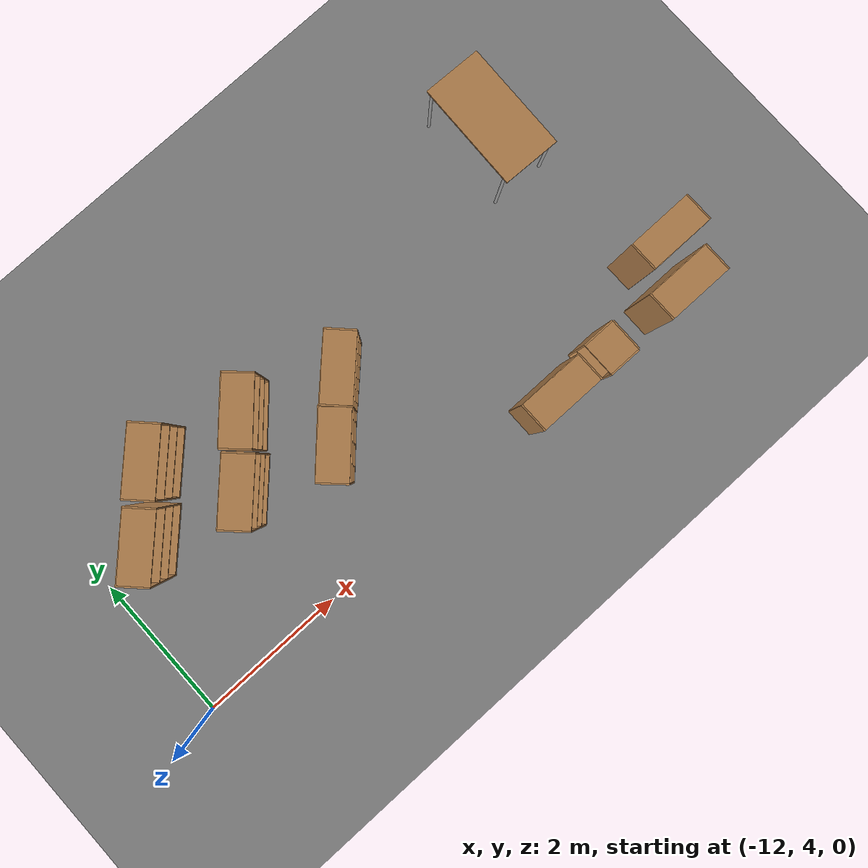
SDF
<sdf version="1.6">
 <world name="default">
  <model name="ground_plane">
   <static>1</static>
   <link name="link">
    <collision name="collision">
     <geometry><plane><normal>0 0 1</normal><size>100 100</size></plane></geometry>
    </collision>
    <visual name="visual">
     <geometry><plane><normal>0 0 1</normal><size>100 100</size></plane></geometry>
     <material>
      <ambient>0.5 0.5 0.5 1</ambient>
      <diffuse>0.5 0.5 0.5 1</diffuse>
      <specular>0.1 0.1 0.1 1</specular>
     </material>
    </visual>
   </link>
  </model>
  <model name="table_0">
   <static>1</static>
   <link name="link">
    <collision name="surface">
     <pose>0 0 1 0 -0 0</pose>
     <geometry><box><size>1.5 0.8 0.03</size></box></geometry>
     <surface><friction><ode><mu>0.6</mu><mu2>0.6</mu2></ode></friction></surface>
    </collision>
    <visual name="visual1">
     <pose>0 0 1 0 -0 0</pose>
     <geometry><box><size>1.5 0.8 0.03</size></box></geometry>
     <material>
      <script><uri>file://media/materials/scripts/gazebo.material</uri><name>Gazebo/Wood</name></script>
     </material>
    </visual>
    <collision name="front_left_leg">
     <pose>0.68 0.38 0.5 0 -0 0</pose>
     <geometry><cylinder><radius>0.02</radius><length>1</length></cylinder></geometry>
    </collision>
    <visual name="front_left_leg">
     <pose>0.68 0.38 0.5 0 -0 0</pose>
     <geometry><cylinder><radius>0.02</radius><length>1</length></cylinder></geometry>
     <material>
      <script><uri>file://media/materials/scripts/gazebo.material</uri><name>Gazebo/Grey</name></script>
     </material>
    </visual>
    <collision name="front_right_leg">
     <pose>0.68 -0.38 0.5 0 -0 0</pose>
     <geometry><cylinder><radius>0.02</radius><length>1</length></cylinder></geometry>
    </collision>
    <visual name="front_right_leg">
     <pose>0.68 -0.38 0.5 0 -0 0</pose>
     <geometry><cylinder><radius>0.02</radius><length>1</length></cylinder></geometry>
     <material>
      <script><uri>file://media/materials/scripts/gazebo.material</uri><name>Gazebo/Grey</name></script>
     </material>
    </visual>
    <collision name="back_right_leg">
     <pose>-0.68 -0.38 0.5 0 -0 0</pose>
     <geometry><cylinder><radius>0.02</radius><length>1</length></cylinder></geometry>
    </collision>
    <visual name="back_right_leg">
     <pose>-0.68 -0.38 0.5 0 -0 0</pose>
     <geometry><cylinder><radius>0.02</radius><length>1</length></cylinder></geometry>
     <material>
      <script><uri>file://media/materials/scripts/gazebo.material</uri><name>Gazebo/Grey</name></script>
     </material>
    </visual>
    <collision name="back_left_leg">
     <pose>-0.68 0.38 0.5 0 -0 0</pose>
     <geometry><cylinder><radius>0.02</radius><length>1</length></cylinder></geometry>
    </collision>
    <visual name="back_left_leg">
     <pose>-0.68 0.38 0.5 0 -0 0</pose>
     <geometry><cylinder><radius>0.02</radius><length>1</length></cylinder></geometry>
     <material>
      <script><uri>file://media/materials/scripts/gazebo.material</uri><name>Gazebo/Grey</name></script>
     </material>
    </visual>
   </link>
   <pose>-4.56564 7.09419 0 0 0 -1.60175</pose>
  </model>
  <model name="bookshelf_2">
   <static>1</static>
   <link name="link">
    <inertial><mass>1</mass></inertial>
    <collision name="back">
     <pose>0 0.005 0.6 0 -0 0</pose>
     <geometry><box><size>0.9 0.01 1.2</size></box></geometry>
    </collision>
    <visual name="visual1">
     <pose>0 0.005 0.6 0 -0 0</pose>
     <geometry><box><size>0.9 0.01 1.2</size></box></geometry>
     <material>
      <script><uri>file://media/materials/scripts/gazebo.material</uri><name>Gazebo/Wood</name></script>
     </material>
    </visual>
    <collision name="left_side">
     <pose>0.45 -0.195 0.6 0 -0 0</pose>
     <geometry><box><size>0.02 0.4 1.2</size></box></geometry>
    </collision>
    <visual name="visual2">
     <pose>0.45 -0.195 0.6 0 -0 0</pose>
     <geometry><box><size>0.02 0.4 1.2</size></box></geometry>
     <material>
      <script><uri>file://media/materials/scripts/gazebo.material</uri><name>Gazebo/Wood</name></script>
     </material>
    </visual>
    <collision name="right_side">
     <pose>-0.45 -0.195 0.6 0 -0 0</pose>
     <geometry><box><size>0.02 0.4 1.2</size></box></geometry>
    </collision>
    <visual name="visual3">
     <pose>-0.45 -0.195 0.6 0 -0 0</pose>
     <geometry><box><size>0.02 0.4 1.2</size></box></geometry>
     <material>
      <script><uri>file://media/materials/scripts/gazebo.material</uri><name>Gazebo/Wood</name></script>
     </material>
    </visual>
    <collision name="bottom">
     <pose>0 -0.195 0.03 0 -0 0</pose>
     <geometry><box><size>0.88 0.4 0.06</size></box></geometry>
    </collision>
    <visual name="visual4">
     <pose>0 -0.195 0.03 0 -0 0</pose>
     <geometry><box><size>0.88 0.4 0.06</size></box></geometry>
     <material>
      <script><uri>file://media/materials/scripts/gazebo.material</uri><name>Gazebo/Wood</name></script>
     </material>
    </visual>
    <collision name="top">
     <pose>0 -0.195 1.19 0 -0 0</pose>
     <geometry><box><size>0.88 0.4 0.02</size></box></geometry>
    </collision>
    <visual name="visual5">
     <pose>0 -0.195 1.19 0 -0 0</pose>
     <geometry><box><size>0.88 0.4 0.02</size></box></geometry>
     <material>
      <script><uri>file://media/materials/scripts/gazebo.material</uri><name>Gazebo/Wood</name></script>
     </material>
    </visual>
    <collision name="low_shelf">
     <pose>0 -0.195 0.43 0 -0 0</pose>
     <geometry><box><size>0.88 0.4 0.02</size></box></geometry>
    </collision>
    <visual name="visual6">
     <pose>0 -0.195 0.43 0 -0 0</pose>
     <geometry><box><size>0.88 0.4 0.02</size></box></geometry>
     <material>
      <script><uri>file://media/materials/scripts/gazebo.material</uri><name>Gazebo/Wood</name></script>
     </material>
    </visual>
    <collision name="high_shelf">
     <pose>0 -0.195 0.8 0 -0 0</pose>
     <geometry><box><size>0.88 0.4 0.02</size></box></geometry>
    </collision>
    <visual name="visual7">
     <pose>0 -0.195 0.8 0 -0 0</pose>
     <geometry><box><size>0.88 0.4 0.02</size></box></geometry>
     <material>
      <script><uri>file://media/materials/scripts/gazebo.material</uri><name>Gazebo/Wood</name></script>
     </material>
    </visual>
   </link>
   <pose>-4.00194 4.40221 0 0 0 -3.13752</pose>
  </model>
  <model name="bookshelf_2_clone_0">
   <static>1</static>
   <link name="link">
    <inertial><mass>1</mass></inertial>
    <collision name="back">
     <pose>0 0.005 0.6 0 -0 0</pose>
     <geometry><box><size>0.9 0.01 1.2</size></box></geometry>
    </collision>
    <visual name="visual1">
     <pose>0 0.005 0.6 0 -0 0</pose>
     <geometry><box><size>0.9 0.01 1.2</size></box></geometry>
     <material>
      <script><uri>file://media/materials/scripts/gazebo.material</uri><name>Gazebo/Wood</name></script>
     </material>
    </visual>
    <collision name="left_side">
     <pose>0.45 -0.195 0.6 0 -0 0</pose>
     <geometry><box><size>0.02 0.4 1.2</size></box></geometry>
    </collision>
    <visual name="visual2">
     <pose>0.45 -0.195 0.6 0 -0 0</pose>
     <geometry><box><size>0.02 0.4 1.2</size></box></geometry>
     <material>
      <script><uri>file://media/materials/scripts/gazebo.material</uri><name>Gazebo/Wood</name></script>
     </material>
    </visual>
    <collision name="right_side">
     <pose>-0.45 -0.195 0.6 0 -0 0</pose>
     <geometry><box><size>0.02 0.4 1.2</size></box></geometry>
    </collision>
    <visual name="visual3">
     <pose>-0.45 -0.195 0.6 0 -0 0</pose>
     <geometry><box><size>0.02 0.4 1.2</size></box></geometry>
     <material>
      <script><uri>file://media/materials/scripts/gazebo.material</uri><name>Gazebo/Wood</name></script>
     </material>
    </visual>
    <collision name="bottom">
     <pose>0 -0.195 0.03 0 -0 0</pose>
     <geometry><box><size>0.88 0.4 0.06</size></box></geometry>
    </collision>
    <visual name="visual4">
     <pose>0 -0.195 0.03 0 -0 0</pose>
     <geometry><box><size>0.88 0.4 0.06</size></box></geometry>
     <material>
      <script><uri>file://media/materials/scripts/gazebo.material</uri><name>Gazebo/Wood</name></script>
     </material>
    </visual>
    <collision name="top">
     <pose>0 -0.195 1.19 0 -0 0</pose>
     <geometry><box><size>0.88 0.4 0.02</size></box></geometry>
    </collision>
    <visual name="visual5">
     <pose>0 -0.195 1.19 0 -0 0</pose>
     <geometry><box><size>0.88 0.4 0.02</size></box></geometry>
     <material>
      <script><uri>file://media/materials/scripts/gazebo.material</uri><name>Gazebo/Wood</name></script>
     </material>
    </visual>
    <collision name="low_shelf">
     <pose>0 -0.195 0.43 0 -0 0</pose>
     <geometry><box><size>0.88 0.4 0.02</size></box></geometry>
    </collision>
    <visual name="visual6">
     <pose>0 -0.195 0.43 0 -0 0</pose>
     <geometry><box><size>0.88 0.4 0.02</size></box></geometry>
     <material>
      <script><uri>file://media/materials/scripts/gazebo.material</uri><name>Gazebo/Wood</name></script>
     </material>
    </visual>
    <collision name="high_shelf">
     <pose>0 -0.195 0.8 0 -0 0</pose>
     <geometry><box><size>0.88 0.4 0.02</size></box></geometry>
    </collision>
    <visual name="visual7">
     <pose>0 -0.195 0.8 0 -0 0</pose>
     <geometry><box><size>0.88 0.4 0.02</size></box></geometry>
     <material>
      <script><uri>file://media/materials/scripts/gazebo.material</uri><name>Gazebo/Wood</name></script>
     </material>
    </visual>
   </link>
   <pose>-8.13666 6.16179 0 0 -0 0.782442</pose>
  </model>
  <model name="bookshelf_3">
   <static>1</static>
   <link name="link">
    <inertial><mass>1</mass></inertial>
    <collision name="back">
     <pose>0 0.005 0.6 0 -0 0</pose>
     <geometry><box><size>0.9 0.01 1.2</size></box></geometry>
    </collision>
    <visual name="visual1">
     <pose>0 0.005 0.6 0 -0 0</pose>
     <geometry><box><size>0.9 0.01 1.2</size></box></geometry>
     <material>
      <script><uri>file://media/materials/scripts/gazebo.material</uri><name>Gazebo/Wood</name></script>
     </material>
    </visual>
    <collision name="left_side">
     <pose>0.45 -0.195 0.6 0 -0 0</pose>
     <geometry><box><size>0.02 0.4 1.2</size></box></geometry>
    </collision>
    <visual name="visual2">
     <pose>0.45 -0.195 0.6 0 -0 0</pose>
     <geometry><box><size>0.02 0.4 1.2</size></box></geometry>
     <material>
      <script><uri>file://media/materials/scripts/gazebo.material</uri><name>Gazebo/Wood</name></script>
     </material>
    </visual>
    <collision name="right_side">
     <pose>-0.45 -0.195 0.6 0 -0 0</pose>
     <geometry><box><size>0.02 0.4 1.2</size></box></geometry>
    </collision>
    <visual name="visual3">
     <pose>-0.45 -0.195 0.6 0 -0 0</pose>
     <geometry><box><size>0.02 0.4 1.2</size></box></geometry>
     <material>
      <script><uri>file://media/materials/scripts/gazebo.material</uri><name>Gazebo/Wood</name></script>
     </material>
    </visual>
    <collision name="bottom">
     <pose>0 -0.195 0.03 0 -0 0</pose>
     <geometry><box><size>0.88 0.4 0.06</size></box></geometry>
    </collision>
    <visual name="visual4">
     <pose>0 -0.195 0.03 0 -0 0</pose>
     <geometry><box><size>0.88 0.4 0.06</size></box></geometry>
     <material>
      <script><uri>file://media/materials/scripts/gazebo.material</uri><name>Gazebo/Wood</name></script>
     </material>
    </visual>
    <collision name="top">
     <pose>0 -0.195 1.19 0 -0 0</pose>
     <geometry><box><size>0.88 0.4 0.02</size></box></geometry>
    </collision>
    <visual name="visual5">
     <pose>0 -0.195 1.19 0 -0 0</pose>
     <geometry><box><size>0.88 0.4 0.02</size></box></geometry>
     <material>
      <script><uri>file://media/materials/scripts/gazebo.material</uri><name>Gazebo/Wood</name></script>
     </material>
    </visual>
    <collision name="low_shelf">
     <pose>0 -0.195 0.43 0 -0 0</pose>
     <geometry><box><size>0.88 0.4 0.02</size></box></geometry>
    </collision>
    <visual name="visual6">
     <pose>0 -0.195 0.43 0 -0 0</pose>
     <geometry><box><size>0.88 0.4 0.02</size></box></geometry>
     <material>
      <script><uri>file://media/materials/scripts/gazebo.material</uri><name>Gazebo/Wood</name></script>
     </material>
    </visual>
    <collision name="high_shelf">
     <pose>0 -0.195 0.8 0 -0 0</pose>
     <geometry><box><size>0.88 0.4 0.02</size></box></geometry>
    </collision>
    <visual name="visual7">
     <pose>0 -0.195 0.8 0 -0 0</pose>
     <geometry><box><size>0.88 0.4 0.02</size></box></geometry>
     <material>
      <script><uri>file://media/materials/scripts/gazebo.material</uri><name>Gazebo/Wood</name></script>
     </material>
    </visual>
   </link>
   <pose>-10.5548 6.86455 0 0 -0 0.783409</pose>
  </model>
  <model name="bookshelf_2_clone_0_clone">
   <static>1</static>
   <link name="link">
    <inertial><mass>1</mass></inertial>
    <collision name="back">
     <pose>0 0.005 0.6 0 -0 0</pose>
     <geometry><box><size>0.9 0.01 1.2</size></box></geometry>
    </collision>
    <visual name="visual1">
     <pose>0 0.005 0.6 0 -0 0</pose>
     <geometry><box><size>0.9 0.01 1.2</size></box></geometry>
     <material>
      <script><uri>file://media/materials/scripts/gazebo.material</uri><name>Gazebo/Wood</name></script>
     </material>
    </visual>
    <collision name="left_side">
     <pose>0.45 -0.195 0.6 0 -0 0</pose>
     <geometry><box><size>0.02 0.4 1.2</size></box></geometry>
    </collision>
    <visual name="visual2">
     <pose>0.45 -0.195 0.6 0 -0 0</pose>
     <geometry><box><size>0.02 0.4 1.2</size></box></geometry>
     <material>
      <script><uri>file://media/materials/scripts/gazebo.material</uri><name>Gazebo/Wood</name></script>
     </material>
    </visual>
    <collision name="right_side">
     <pose>-0.45 -0.195 0.6 0 -0 0</pose>
     <geometry><box><size>0.02 0.4 1.2</size></box></geometry>
    </collision>
    <visual name="visual3">
     <pose>-0.45 -0.195 0.6 0 -0 0</pose>
     <geometry><box><size>0.02 0.4 1.2</size></box></geometry>
     <material>
      <script><uri>file://media/materials/scripts/gazebo.material</uri><name>Gazebo/Wood</name></script>
     </material>
    </visual>
    <collision name="bottom">
     <pose>0 -0.195 0.03 0 -0 0</pose>
     <geometry><box><size>0.88 0.4 0.06</size></box></geometry>
    </collision>
    <visual name="visual4">
     <pose>0 -0.195 0.03 0 -0 0</pose>
     <geometry><box><size>0.88 0.4 0.06</size></box></geometry>
     <material>
      <script><uri>file://media/materials/scripts/gazebo.material</uri><name>Gazebo/Wood</name></script>
     </material>
    </visual>
    <collision name="top">
     <pose>0 -0.195 1.19 0 -0 0</pose>
     <geometry><box><size>0.88 0.4 0.02</size></box></geometry>
    </collision>
    <visual name="visual5">
     <pose>0 -0.195 1.19 0 -0 0</pose>
     <geometry><box><size>0.88 0.4 0.02</size></box></geometry>
     <material>
      <script><uri>file://media/materials/scripts/gazebo.material</uri><name>Gazebo/Wood</name></script>
     </material>
    </visual>
    <collision name="low_shelf">
     <pose>0 -0.195 0.43 0 -0 0</pose>
     <geometry><box><size>0.88 0.4 0.02</size></box></geometry>
    </collision>
    <visual name="visual6">
     <pose>0 -0.195 0.43 0 -0 0</pose>
     <geometry><box><size>0.88 0.4 0.02</size></box></geometry>
     <material>
      <script><uri>file://media/materials/scripts/gazebo.material</uri><name>Gazebo/Wood</name></script>
     </material>
    </visual>
    <collision name="high_shelf">
     <pose>0 -0.195 0.8 0 -0 0</pose>
     <geometry><box><size>0.88 0.4 0.02</size></box></geometry>
    </collision>
    <visual name="visual7">
     <pose>0 -0.195 0.8 0 -0 0</pose>
     <geometry><box><size>0.88 0.4 0.02</size></box></geometry>
     <material>
      <script><uri>file://media/materials/scripts/gazebo.material</uri><name>Gazebo/Wood</name></script>
     </material>
    </visual>
   </link>
   <pose>-9.35545 6.56811 0 0 -0 0.821355</pose>
  </model>
  <model name="bookshelf_2_clone_0_clone_0">
   <static>1</static>
   <link name="link">
    <inertial><mass>1</mass></inertial>
    <collision name="back">
     <pose>0 0.005 0.6 0 -0 0</pose>
     <geometry><box><size>0.9 0.01 1.2</size></box></geometry>
    </collision>
    <visual name="visual1">
     <pose>0 0.005 0.6 0 -0 0</pose>
     <geometry><box><size>0.9 0.01 1.2</size></box></geometry>
     <material>
      <script><uri>file://media/materials/scripts/gazebo.material</uri><name>Gazebo/Wood</name></script>
     </material>
    </visual>
    <collision name="left_side">
     <pose>0.45 -0.195 0.6 0 -0 0</pose>
     <geometry><box><size>0.02 0.4 1.2</size></box></geometry>
    </collision>
    <visual name="visual2">
     <pose>0.45 -0.195 0.6 0 -0 0</pose>
     <geometry><box><size>0.02 0.4 1.2</size></box></geometry>
     <material>
      <script><uri>file://media/materials/scripts/gazebo.material</uri><name>Gazebo/Wood</name></script>
     </material>
    </visual>
    <collision name="right_side">
     <pose>-0.45 -0.195 0.6 0 -0 0</pose>
     <geometry><box><size>0.02 0.4 1.2</size></box></geometry>
    </collision>
    <visual name="visual3">
     <pose>-0.45 -0.195 0.6 0 -0 0</pose>
     <geometry><box><size>0.02 0.4 1.2</size></box></geometry>
     <material>
      <script><uri>file://media/materials/scripts/gazebo.material</uri><name>Gazebo/Wood</name></script>
     </material>
    </visual>
    <collision name="bottom">
     <pose>0 -0.195 0.03 0 -0 0</pose>
     <geometry><box><size>0.88 0.4 0.06</size></box></geometry>
    </collision>
    <visual name="visual4">
     <pose>0 -0.195 0.03 0 -0 0</pose>
     <geometry><box><size>0.88 0.4 0.06</size></box></geometry>
     <material>
      <script><uri>file://media/materials/scripts/gazebo.material</uri><name>Gazebo/Wood</name></script>
     </material>
    </visual>
    <collision name="top">
     <pose>0 -0.195 1.19 0 -0 0</pose>
     <geometry><box><size>0.88 0.4 0.02</size></box></geometry>
    </collision>
    <visual name="visual5">
     <pose>0 -0.195 1.19 0 -0 0</pose>
     <geometry><box><size>0.88 0.4 0.02</size></box></geometry>
     <material>
      <script><uri>file://media/materials/scripts/gazebo.material</uri><name>Gazebo/Wood</name></script>
     </material>
    </visual>
    <collision name="low_shelf">
     <pose>0 -0.195 0.43 0 -0 0</pose>
     <geometry><box><size>0.88 0.4 0.02</size></box></geometry>
    </collision>
    <visual name="visual6">
     <pose>0 -0.195 0.43 0 -0 0</pose>
     <geometry><box><size>0.88 0.4 0.02</size></box></geometry>
     <material>
      <script><uri>file://media/materials/scripts/gazebo.material</uri><name>Gazebo/Wood</name></script>
     </material>
    </visual>
    <collision name="high_shelf">
     <pose>0 -0.195 0.8 0 -0 0</pose>
     <geometry><box><size>0.88 0.4 0.02</size></box></geometry>
    </collision>
    <visual name="visual7">
     <pose>0 -0.195 0.8 0 -0 0</pose>
     <geometry><box><size>0.88 0.4 0.02</size></box></geometry>
     <material>
      <script><uri>file://media/materials/scripts/gazebo.material</uri><name>Gazebo/Wood</name></script>
     </material>
    </visual>
   </link>
   <pose>-8.77777 5.51732 0 0 -0 0.810603</pose>
  </model>
  <model name="bookshelf_2_clone_0_clone_1">
   <static>1</static>
   <link name="link">
    <inertial><mass>1</mass></inertial>
    <collision name="back">
     <pose>0 0.005 0.6 0 -0 0</pose>
     <geometry><box><size>0.9 0.01 1.2</size></box></geometry>
    </collision>
    <visual name="visual1">
     <pose>0 0.005 0.6 0 -0 0</pose>
     <geometry><box><size>0.9 0.01 1.2</size></box></geometry>
     <material>
      <script><uri>file://media/materials/scripts/gazebo.material</uri><name>Gazebo/Wood</name></script>
     </material>
    </visual>
    <collision name="left_side">
     <pose>0.45 -0.195 0.6 0 -0 0</pose>
     <geometry><box><size>0.02 0.4 1.2</size></box></geometry>
    </collision>
    <visual name="visual2">
     <pose>0.45 -0.195 0.6 0 -0 0</pose>
     <geometry><box><size>0.02 0.4 1.2</size></box></geometry>
     <material>
      <script><uri>file://media/materials/scripts/gazebo.material</uri><name>Gazebo/Wood</name></script>
     </material>
    </visual>
    <collision name="right_side">
     <pose>-0.45 -0.195 0.6 0 -0 0</pose>
     <geometry><box><size>0.02 0.4 1.2</size></box></geometry>
    </collision>
    <visual name="visual3">
     <pose>-0.45 -0.195 0.6 0 -0 0</pose>
     <geometry><box><size>0.02 0.4 1.2</size></box></geometry>
     <material>
      <script><uri>file://media/materials/scripts/gazebo.material</uri><name>Gazebo/Wood</name></script>
     </material>
    </visual>
    <collision name="bottom">
     <pose>0 -0.195 0.03 0 -0 0</pose>
     <geometry><box><size>0.88 0.4 0.06</size></box></geometry>
    </collision>
    <visual name="visual4">
     <pose>0 -0.195 0.03 0 -0 0</pose>
     <geometry><box><size>0.88 0.4 0.06</size></box></geometry>
     <material>
      <script><uri>file://media/materials/scripts/gazebo.material</uri><name>Gazebo/Wood</name></script>
     </material>
    </visual>
    <collision name="top">
     <pose>0 -0.195 1.19 0 -0 0</pose>
     <geometry><box><size>0.88 0.4 0.02</size></box></geometry>
    </collision>
    <visual name="visual5">
     <pose>0 -0.195 1.19 0 -0 0</pose>
     <geometry><box><size>0.88 0.4 0.02</size></box></geometry>
     <material>
      <script><uri>file://media/materials/scripts/gazebo.material</uri><name>Gazebo/Wood</name></script>
     </material>
    </visual>
    <collision name="low_shelf">
     <pose>0 -0.195 0.43 0 -0 0</pose>
     <geometry><box><size>0.88 0.4 0.02</size></box></geometry>
    </collision>
    <visual name="visual6">
     <pose>0 -0.195 0.43 0 -0 0</pose>
     <geometry><box><size>0.88 0.4 0.02</size></box></geometry>
     <material>
      <script><uri>file://media/materials/scripts/gazebo.material</uri><name>Gazebo/Wood</name></script>
     </material>
    </visual>
    <collision name="high_shelf">
     <pose>0 -0.195 0.8 0 -0 0</pose>
     <geometry><box><size>0.88 0.4 0.02</size></box></geometry>
    </collision>
    <visual name="visual7">
     <pose>0 -0.195 0.8 0 -0 0</pose>
     <geometry><box><size>0.88 0.4 0.02</size></box></geometry>
     <material>
      <script><uri>file://media/materials/scripts/gazebo.material</uri><name>Gazebo/Wood</name></script>
     </material>
    </visual>
   </link>
   <pose>-9.96898 5.86541 0 0 -0 0.799373</pose>
  </model>
  <model name="bookshelf_2_clone_0_clone_1_clone">
   <static>1</static>
   <link name="link">
    <inertial><mass>1</mass></inertial>
    <collision name="back">
     <pose>0 0.005 0.6 0 -0 0</pose>
     <geometry><box><size>0.9 0.01 1.2</size></box></geometry>
    </collision>
    <visual name="visual1">
     <pose>0 0.005 0.6 0 -0 0</pose>
     <geometry><box><size>0.9 0.01 1.2</size></box></geometry>
     <material>
      <script><uri>file://media/materials/scripts/gazebo.material</uri><name>Gazebo/Wood</name></script>
     </material>
    </visual>
    <collision name="left_side">
     <pose>0.45 -0.195 0.6 0 -0 0</pose>
     <geometry><box><size>0.02 0.4 1.2</size></box></geometry>
    </collision>
    <visual name="visual2">
     <pose>0.45 -0.195 0.6 0 -0 0</pose>
     <geometry><box><size>0.02 0.4 1.2</size></box></geometry>
     <material>
      <script><uri>file://media/materials/scripts/gazebo.material</uri><name>Gazebo/Wood</name></script>
     </material>
    </visual>
    <collision name="right_side">
     <pose>-0.45 -0.195 0.6 0 -0 0</pose>
     <geometry><box><size>0.02 0.4 1.2</size></box></geometry>
    </collision>
    <visual name="visual3">
     <pose>-0.45 -0.195 0.6 0 -0 0</pose>
     <geometry><box><size>0.02 0.4 1.2</size></box></geometry>
     <material>
      <script><uri>file://media/materials/scripts/gazebo.material</uri><name>Gazebo/Wood</name></script>
     </material>
    </visual>
    <collision name="bottom">
     <pose>0 -0.195 0.03 0 -0 0</pose>
     <geometry><box><size>0.88 0.4 0.06</size></box></geometry>
    </collision>
    <visual name="visual4">
     <pose>0 -0.195 0.03 0 -0 0</pose>
     <geometry><box><size>0.88 0.4 0.06</size></box></geometry>
     <material>
      <script><uri>file://media/materials/scripts/gazebo.material</uri><name>Gazebo/Wood</name></script>
     </material>
    </visual>
    <collision name="top">
     <pose>0 -0.195 1.19 0 -0 0</pose>
     <geometry><box><size>0.88 0.4 0.02</size></box></geometry>
    </collision>
    <visual name="visual5">
     <pose>0 -0.195 1.19 0 -0 0</pose>
     <geometry><box><size>0.88 0.4 0.02</size></box></geometry>
     <material>
      <script><uri>file://media/materials/scripts/gazebo.material</uri><name>Gazebo/Wood</name></script>
     </material>
    </visual>
    <collision name="low_shelf">
     <pose>0 -0.195 0.43 0 -0 0</pose>
     <geometry><box><size>0.88 0.4 0.02</size></box></geometry>
    </collision>
    <visual name="visual6">
     <pose>0 -0.195 0.43 0 -0 0</pose>
     <geometry><box><size>0.88 0.4 0.02</size></box></geometry>
     <material>
      <script><uri>file://media/materials/scripts/gazebo.material</uri><name>Gazebo/Wood</name></script>
     </material>
    </visual>
    <collision name="high_shelf">
     <pose>0 -0.195 0.8 0 -0 0</pose>
     <geometry><box><size>0.88 0.4 0.02</size></box></geometry>
    </collision>
    <visual name="visual7">
     <pose>0 -0.195 0.8 0 -0 0</pose>
     <geometry><box><size>0.88 0.4 0.02</size></box></geometry>
     <material>
      <script><uri>file://media/materials/scripts/gazebo.material</uri><name>Gazebo/Wood</name></script>
     </material>
    </visual>
   </link>
   <pose>-11.2335 6.15515 0 0 -0 0.78457</pose>
  </model>
  <model name="bookshelf_4">
   <static>1</static>
   <link name="link">
    <inertial><mass>1</mass></inertial>
    <collision name="back">
     <pose>0 0.005 0.6 0 -0 0</pose>
     <geometry><box><size>0.9 0.01 1.2</size></box></geometry>
    </collision>
    <visual name="visual1">
     <pose>0 0.005 0.6 0 -0 0</pose>
     <geometry><box><size>0.9 0.01 1.2</size></box></geometry>
     <material>
      <script><uri>file://media/materials/scripts/gazebo.material</uri><name>Gazebo/Wood</name></script>
     </material>
    </visual>
    <collision name="left_side">
     <pose>0.45 -0.195 0.6 0 -0 0</pose>
     <geometry><box><size>0.02 0.4 1.2</size></box></geometry>
    </collision>
    <visual name="visual2">
     <pose>0.45 -0.195 0.6 0 -0 0</pose>
     <geometry><box><size>0.02 0.4 1.2</size></box></geometry>
     <material>
      <script><uri>file://media/materials/scripts/gazebo.material</uri><name>Gazebo/Wood</name></script>
     </material>
    </visual>
    <collision name="right_side">
     <pose>-0.45 -0.195 0.6 0 -0 0</pose>
     <geometry><box><size>0.02 0.4 1.2</size></box></geometry>
    </collision>
    <visual name="visual3">
     <pose>-0.45 -0.195 0.6 0 -0 0</pose>
     <geometry><box><size>0.02 0.4 1.2</size></box></geometry>
     <material>
      <script><uri>file://media/materials/scripts/gazebo.material</uri><name>Gazebo/Wood</name></script>
     </material>
    </visual>
    <collision name="bottom">
     <pose>0 -0.195 0.03 0 -0 0</pose>
     <geometry><box><size>0.88 0.4 0.06</size></box></geometry>
    </collision>
    <visual name="visual4">
     <pose>0 -0.195 0.03 0 -0 0</pose>
     <geometry><box><size>0.88 0.4 0.06</size></box></geometry>
     <material>
      <script><uri>file://media/materials/scripts/gazebo.material</uri><name>Gazebo/Wood</name></script>
     </material>
    </visual>
    <collision name="top">
     <pose>0 -0.195 1.19 0 -0 0</pose>
     <geometry><box><size>0.88 0.4 0.02</size></box></geometry>
    </collision>
    <visual name="visual5">
     <pose>0 -0.195 1.19 0 -0 0</pose>
     <geometry><box><size>0.88 0.4 0.02</size></box></geometry>
     <material>
      <script><uri>file://media/materials/scripts/gazebo.material</uri><name>Gazebo/Wood</name></script>
     </material>
    </visual>
    <collision name="low_shelf">
     <pose>0 -0.195 0.43 0 -0 0</pose>
     <geometry><box><size>0.88 0.4 0.02</size></box></geometry>
    </collision>
    <visual name="visual6">
     <pose>0 -0.195 0.43 0 -0 0</pose>
     <geometry><box><size>0.88 0.4 0.02</size></box></geometry>
     <material>
      <script><uri>file://media/materials/scripts/gazebo.material</uri><name>Gazebo/Wood</name></script>
     </material>
    </visual>
    <collision name="high_shelf">
     <pose>0 -0.195 0.8 0 -0 0</pose>
     <geometry><box><size>0.88 0.4 0.02</size></box></geometry>
    </collision>
    <visual name="visual7">
     <pose>0 -0.195 0.8 0 -0 0</pose>
     <geometry><box><size>0.88 0.4 0.02</size></box></geometry>
     <material>
      <script><uri>file://media/materials/scripts/gazebo.material</uri><name>Gazebo/Wood</name></script>
     </material>
    </visual>
   </link>
   <pose>-4.25187 4.21167 0 0 -0 0</pose>
  </model>
  <model name="bookshelf_5">
   <static>1</static>
   <link name="link">
    <inertial><mass>1</mass></inertial>
    <collision name="back">
     <pose>0 0.005 0.6 0 -0 0</pose>
     <geometry><box><size>0.9 0.01 1.2</size></box></geometry>
    </collision>
    <visual name="visual1">
     <pose>0 0.005 0.6 0 -0 0</pose>
     <geometry><box><size>0.9 0.01 1.2</size></box></geometry>
     <material>
      <script><uri>file://media/materials/scripts/gazebo.material</uri><name>Gazebo/Wood</name></script>
     </material>
    </visual>
    <collision name="left_side">
     <pose>0.45 -0.195 0.6 0 -0 0</pose>
     <geometry><box><size>0.02 0.4 1.2</size></box></geometry>
    </collision>
    <visual name="visual2">
     <pose>0.45 -0.195 0.6 0 -0 0</pose>
     <geometry><box><size>0.02 0.4 1.2</size></box></geometry>
     <material>
      <script><uri>file://media/materials/scripts/gazebo.material</uri><name>Gazebo/Wood</name></script>
     </material>
    </visual>
    <collision name="right_side">
     <pose>-0.45 -0.195 0.6 0 -0 0</pose>
     <geometry><box><size>0.02 0.4 1.2</size></box></geometry>
    </collision>
    <visual name="visual3">
     <pose>-0.45 -0.195 0.6 0 -0 0</pose>
     <geometry><box><size>0.02 0.4 1.2</size></box></geometry>
     <material>
      <script><uri>file://media/materials/scripts/gazebo.material</uri><name>Gazebo/Wood</name></script>
     </material>
    </visual>
    <collision name="bottom">
     <pose>0 -0.195 0.03 0 -0 0</pose>
     <geometry><box><size>0.88 0.4 0.06</size></box></geometry>
    </collision>
    <visual name="visual4">
     <pose>0 -0.195 0.03 0 -0 0</pose>
     <geometry><box><size>0.88 0.4 0.06</size></box></geometry>
     <material>
      <script><uri>file://media/materials/scripts/gazebo.material</uri><name>Gazebo/Wood</name></script>
     </material>
    </visual>
    <collision name="top">
     <pose>0 -0.195 1.19 0 -0 0</pose>
     <geometry><box><size>0.88 0.4 0.02</size></box></geometry>
    </collision>
    <visual name="visual5">
     <pose>0 -0.195 1.19 0 -0 0</pose>
     <geometry><box><size>0.88 0.4 0.02</size></box></geometry>
     <material>
      <script><uri>file://media/materials/scripts/gazebo.material</uri><name>Gazebo/Wood</name></script>
     </material>
    </visual>
    <collision name="low_shelf">
     <pose>0 -0.195 0.43 0 -0 0</pose>
     <geometry><box><size>0.88 0.4 0.02</size></box></geometry>
    </collision>
    <visual name="visual6">
     <pose>0 -0.195 0.43 0 -0 0</pose>
     <geometry><box><size>0.88 0.4 0.02</size></box></geometry>
     <material>
      <script><uri>file://media/materials/scripts/gazebo.material</uri><name>Gazebo/Wood</name></script>
     </material>
    </visual>
    <collision name="high_shelf">
     <pose>0 -0.195 0.8 0 -0 0</pose>
     <geometry><box><size>0.88 0.4 0.02</size></box></geometry>
    </collision>
    <visual name="visual7">
     <pose>0 -0.195 0.8 0 -0 0</pose>
     <geometry><box><size>0.88 0.4 0.02</size></box></geometry>
     <material>
      <script><uri>file://media/materials/scripts/gazebo.material</uri><name>Gazebo/Wood</name></script>
     </material>
    </visual>
   </link>
   <pose>-6.25755 4.26098 0 0 -0 0</pose>
  </model>
  <model name="cabinet_5">
   <static>1</static>
   <link name="cabinet_bottom_plate">
    <inertial>
     <pose>0 0 -1 0 -0 0</pose>
     <inertia><ixx>2.05</ixx><ixy>0</ixy><ixz>0</ixz><iyy>2.05</iyy><iyz>0</iyz><izz>2.05</izz></inertia>
     <mass>25</mass>
    </inertial>
    <collision name="cabinet_bottom_plate_geom">
     <pose>0 0 0.01 0 -0 0</pose>
     <geometry><box><size>0.45 0.45 0.02</size></box></geometry>
    </collision>
    <visual name="cabinet_bottom_plate_geom_visual">
     <pose>0 0 0.01 0 -0 0</pose>
     <geometry><box><size>0.45 0.45 0.02</size></box></geometry>
     <material>
      <script><uri>file://media/materials/scripts/gazebo.material</uri><name>Gazebo/Wood</name></script>
     </material>
    </visual>
    <collision name="cabinet_bottom_plate_geom_cabinet_back_plate">
     <pose>0.235 0 0.51 0 -0 0</pose>
     <geometry><box><size>0.02 0.45 1.02</size></box></geometry>
    </collision>
    <visual name="cabinet_bottom_plate_geom_cabinet_back_plate_visual">
     <pose>0.235 0 0.51 0 -0 0</pose>
     <geometry><box><size>0.02 0.45 1.02</size></box></geometry>
     <material>
      <script><uri>file://media/materials/scripts/gazebo.material</uri><name>Gazebo/Wood</name></script>
     </material>
    </visual>
    <collision name="cabinet_bottom_plate_geom_cabinet_left_plate">
     <pose>0 0.235 0.51 0 -0 0</pose>
     <geometry><box><size>0.45 0.02 1.02</size></box></geometry>
    </collision>
    <visual name="cabinet_bottom_plate_geom_cabinet_left_plate_visual">
     <pose>0 0.235 0.51 0 -0 0</pose>
     <geometry><box><size>0.45 0.02 1.02</size></box></geometry>
     <material>
      <script><uri>file://media/materials/scripts/gazebo.material</uri><name>Gazebo/Wood</name></script>
     </material>
    </visual>
    <collision name="cabinet_bottom_plate_geom_cabinet_middle_plate">
     <pose>0 0 0.51 0 -0 0</pose>
     <geometry><box><size>0.45 0.45 0.02</size></box></geometry>
    </collision>
    <visual name="cabinet_bottom_plate_geom_cabinet_middle_plate_visual">
     <pose>0 0 0.51 0 -0 0</pose>
     <geometry><box><size>0.45 0.45 0.02</size></box></geometry>
     <material>
      <script><uri>file://media/materials/scripts/gazebo.material</uri><name>Gazebo/Wood</name></script>
     </material>
    </visual>
    <collision name="cabinet_bottom_plate_geom_cabinet_right_plate">
     <pose>0 -0.235 0.51 0 -0 0</pose>
     <geometry><box><size>0.45 0.02 1.02</size></box></geometry>
    </collision>
    <visual name="cabinet_bottom_plate_geom_cabinet_right_plate_visual">
     <pose>0 -0.235 0.51 0 -0 0</pose>
     <geometry><box><size>0.45 0.02 1.02</size></box></geometry>
     <material>
      <script><uri>file://media/materials/scripts/gazebo.material</uri><name>Gazebo/Wood</name></script>
     </material>
    </visual>
    <collision name="cabinet_bottom_plate_geom_cabinet_top_plate">
     <pose>0 0 1.01 0 -0 0</pose>
     <geometry><box><size>0.45 0.45 0.02</size></box></geometry>
    </collision>
    <visual name="cabinet_bottom_plate_geom_cabinet_top_plate_visual">
     <pose>0 0 1.01 0 -0 0</pose>
     <geometry><box><size>0.45 0.45 0.02</size></box></geometry>
     <material>
      <script><uri>file://media/materials/scripts/gazebo.material</uri><name>Gazebo/Wood</name></script>
     </material>
    </visual>
   </link>
   <pose>-5.42206 4.04596 0 0 -0 0</pose>
  </model>
 </world>
</sdf>
